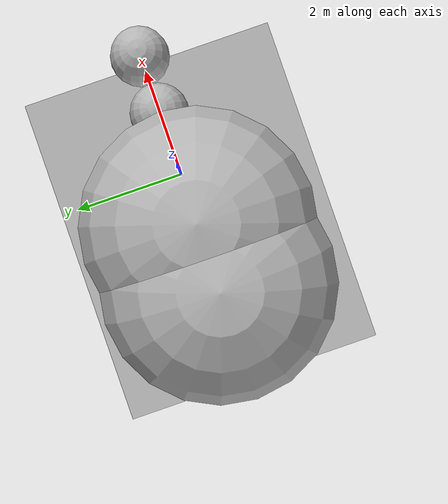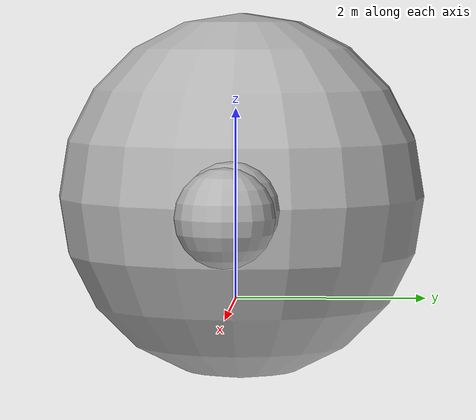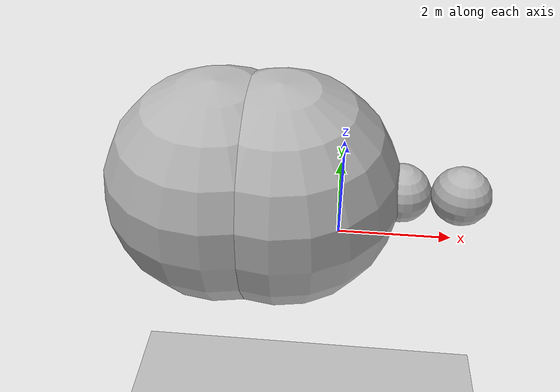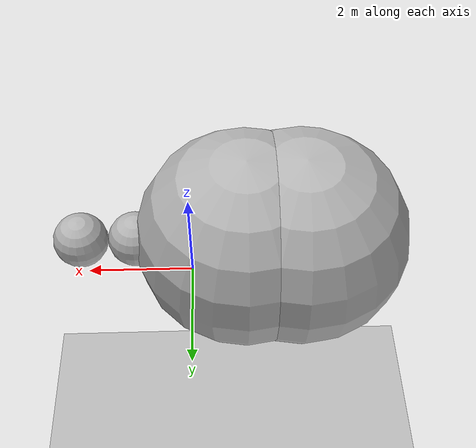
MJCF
<mujoco>
  <option gravity="0 0 -9.81" />
  <worldbody>

    <body name="object_2" pos="0 0 1">
      <geom type="cylinder" size="0.2 0.05" rgba="0.7 0.7 0.7 1" />
    </body>

    <body name="object_3" pos="-10 0 -10">
      <geom type="plane" size="25 25 0.1" rgba="0.7 0.7 0.7 1" friction="1 1 1" />
    </body>
  <body name="disc_light" pos="2.0 0.0 1.0"><geom type="sphere" size="0.5" rgba="0.7 0.7 0.7 1" /></body><body name="disc_heavy" pos="-2.0 0.0 1.0"><geom type="sphere" size="2.0" rgba="0.7 0.7 0.7 1" /></body><body name="light_disc" pos="1.0 0.0 1.0"><geom type="sphere" size="0.5" rgba="0.7 0.7 0.7 1" /></body><body name="heavy_disc" pos="-1.0 0.0 1.0"><geom type="sphere" size="2.0" rgba="0.7 0.7 0.7 1" /></body><body name="test_disc" pos="0.0 0.0 1.0"><geom type="sphere" size="1.0" rgba="0.5 0.5 0.5 1.0" /></body></worldbody>
</mujoco>
